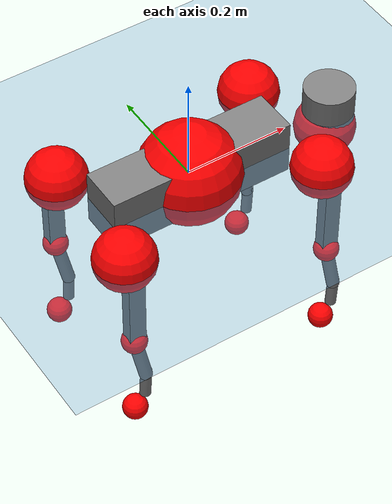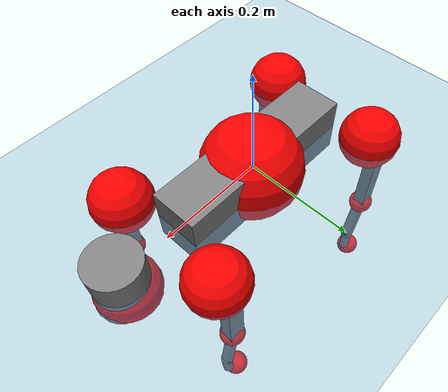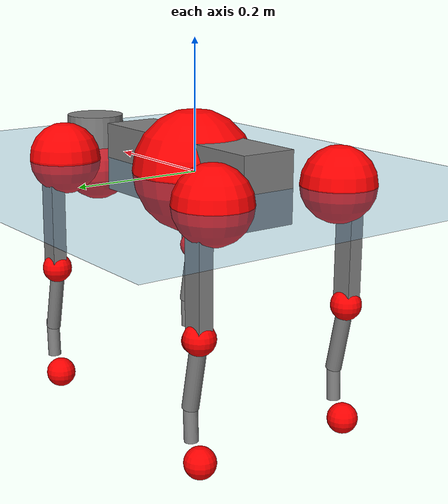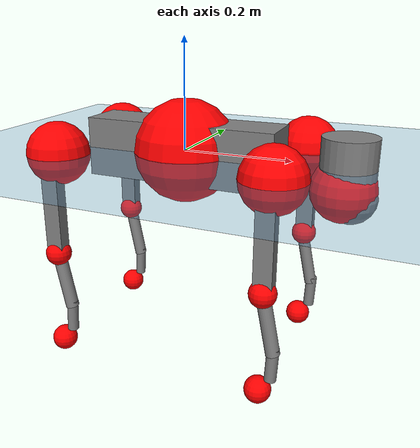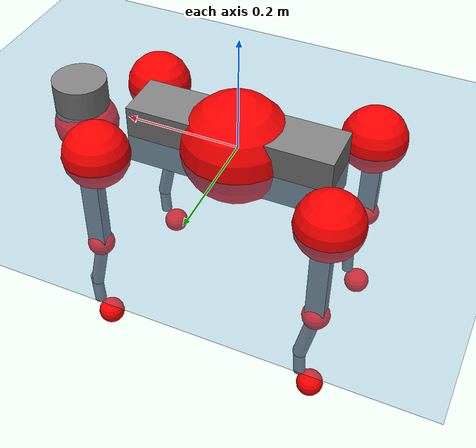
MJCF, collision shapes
<mujoco model="go2">
  <compiler angle="radian" assetdir="assets" balanceinertia="true" inertiafromgeom="false"/>

  <option timestep="0.005" density="1.2" viscosity="2e-05"/>

  <size nkey="1"/>

  <visual>
    <quality shadowsize="8192"/>
    <map shadowclip="0.5"/>
  </visual>

  <default>
    <default class="/">
      <geom contype="0" conaffinity="0" group="1" solref="-1000 -80"/>
      <site size="0.01 0.005 0.005" group="5"/>
      <general forcelimited="true" biastype="affine" gainprm="20" biasprm="0 -20 -0.5"/>
      <default class="go2">
        <joint armature="0.01" damping="0.01" frictionloss="0.2"/>
        <geom condim="1" margin="0.001"/>
        <default class="visual">
          <geom type="mesh" group="2"/>
        </default>
        <default class="collision">
          <geom group="3"/>
          <default class="foot">
            <geom size="0.022 0 0" condim="6" priority="1" friction="0.8 0.02 0.01" solimp="0.015 1 0.022"/>
          </default>
        </default>
        <default class="reward_collision_sphere">
          <geom group="5" rgba="1 0 0 1"/>
        </default>
      </default>
    </default>
  </default>

  <asset>
    <texture type="skybox" colorspace="auto" name="//unnamed_texture_0" builtin="gradient" rgb1="0.95 0.95 0.95" rgb2="0.95 0.95 0.95" width="100" height="600"/>
    <texture type="2d" colorspace="auto" name="texplane" builtin="checker" rgb1="0.345 0.575 0.748" rgb2="0.345 0.575 0.748" markrgb="1 1 1" width="512" height="512"/>
    <material name="MatPlane" class="/" texture="texplane" texuniform="true" texrepeat="2 2" specular="0.9"/>
    <material name="metal" class="/" rgba="0.9 0.95 0.95 1"/>
    <material name="black" class="/" rgba="0 0 0 1"/>
    <material name="white" class="/"/>
    <material name="gray" class="/" rgba="0.671705 0.692426 0.77427 1"/>
    <mesh name="base_0" class="/" file="base_0.obj"/>
    <mesh name="base_1" class="/" file="base_1.obj"/>
    <mesh name="base_2" class="/" file="base_2.obj"/>
    <mesh name="base_3" class="/" file="base_3.obj"/>
    <mesh name="base_4" class="/" file="base_4.obj"/>
    <mesh name="hip_0" class="/" file="hip_0.obj"/>
    <mesh name="hip_1" class="/" file="hip_1.obj"/>
    <mesh name="thigh_0" class="/" file="thigh_0.obj"/>
    <mesh name="thigh_1" class="/" file="thigh_1.obj"/>
    <mesh name="thigh_mirror_0" class="/" file="thigh_mirror_0.obj"/>
    <mesh name="thigh_mirror_1" class="/" file="thigh_mirror_1.obj"/>
    <mesh name="calf_0" class="/" file="calf_0.obj"/>
    <mesh name="calf_1" class="/" file="calf_1.obj"/>
    <mesh name="calf_mirror_0" class="/" file="calf_mirror_0.obj"/>
    <mesh name="calf_mirror_1" class="/" file="calf_mirror_1.obj"/>
    <mesh name="foot" class="/" file="foot.obj"/>
  </asset>

  <worldbody>
    <geom name="floor" class="/" size="100 100 0.125" type="plane" group="0" material="MatPlane"/>
    <light name="toplight_shadow" class="/" pos="0 0 5" dir="0.0990148 0.0990148 -0.990148" type="directional" ambient="0.04 0.04 0.04" diffuse="0.55 0.55 0.55" specular="0.12 0.12 0.12"/>
    <light name="toplight_fill" class="/" pos="0 0 5" dir="0.0990148 0.0990148 -0.990148" type="directional" castshadow="false" ambient="0.04 0.04 0.04" diffuse="0.3 0.3 0.3" specular="0.08 0.08 0.08"/>
    <body name="trunk" childclass="go2" pos="0.00224479 -0.000414261 0.000772449" quat="1 0.00088598 0.00031191 5.98261e-05">
      <inertial pos="0.0193084 -0.000962922 -0.00513846" quat="-0.000462536 0.713311 -0.00180856 0.700845" mass="5.52577" diaginertia="0.117404 0.0763279 0.0104417"/>
      <joint name="//unnamed_joint_0" type="free" armature="0" damping="0" frictionloss="0"/>
      <geom name="//unnamed_geom_1" class="visual" material="black" mesh="base_0"/>
      <geom name="//unnamed_geom_2" class="visual" material="black" mesh="base_1"/>
      <geom name="//unnamed_geom_3" class="visual" material="black" mesh="base_2"/>
      <geom name="//unnamed_geom_4" class="visual" material="white" mesh="base_3"/>
      <geom name="//unnamed_geom_5" class="visual" material="gray" mesh="base_4"/>
      <geom name="trunk_1" class="collision" size="0.177007 0.0439929 0.0536384" type="box"/>
      <geom name="trunk_2" class="collision" size="0.0470513 0.0423461" pos="0.291142 0 0.00847902" type="cylinder"/>
      <geom name="trunk_3" class="collision" size="0.0442282" pos="0.299315 0 -0.0508741"/>
      <geom name="//unnamed_geom_9" class="reward_collision_sphere" size="0.0941025"/>
      <geom name="//unnamed_geom_10" class="reward_collision_sphere" size="0.0564615" pos="0.286034 0 -0.0381556"/>
      <site name="imu" pos="-0.0286295 -0.00218342 0.0445675" size="0.00941025"/>
      <camera name="track" pos="0 -1.90725 0" quat="0.707107 0.707107 0 0" mode="trackcom"/>
      <camera name="ego_camera" pos="0.318724 0 0.0381556" quat="-0.5 -0.5 0.5 0.5"/>
      <body name="FL_hip" pos="0.197327 0.0449785 0.00125599" quat="1 0.000363022 -0.000238017 -0.000300914">
        <inertial pos="-0.00608434 0.00154865 -0.000497023" quat="0.49909 0.499487 0.504708 0.49668" mass="0.567739" diaginertia="0.00100647 0.000464445 0.000209906"/>
        <joint name="FL_hip_joint" pos="0 0 0" axis="0.999894 -0.00843984 -0.0118941" stiffness="0.000717229" range="-1.00594 1.03894" armature="0.00927222" damping="0.00385784" frictionloss="0.189611"/>
        <geom name="//unnamed_geom_11" class="visual" material="metal" mesh="hip_0"/>
        <geom name="//unnamed_geom_12" class="visual" material="gray" mesh="hip_1"/>
        <geom name="//unnamed_geom_13" class="collision" size="0.0432872 0.0188205" pos="0 0.0762898 0" quat="0.707107 0.707107 0 0" type="cylinder"/>
        <geom name="//unnamed_geom_14" class="reward_collision_sphere" size="0.0564615" pos="0 0.0667536 0"/>
        <body name="FL_thigh" pos="-0.00151794 0.0904074 0.00185857" quat="1 0.000213811 -0.000501735 0.000201745">
          <inertial pos="-0.00355157 -0.021239 -0.0293795" quat="0.829567 0.0847075 -0.0199938 0.551583" mass="0.948479" diaginertia="0.00650878 0.00459477 0.000393071"/>
          <joint name="FL_thigh_joint" pos="0 0 0" axis="-0.00961628 0.999943 -0.00472224" range="-1.58224 3.49373" armature="0.00979883" damping="0.00269458" frictionloss="0.197753"/>
          <geom name="//unnamed_geom_15" class="visual" material="metal" mesh="thigh_0"/>
          <geom name="//unnamed_geom_16" class="visual" material="gray" mesh="thigh_1"/>
          <geom name="//unnamed_geom_17" class="collision" size="0.100219 0.0115276 0.0159974" pos="0 0 -0.0903015" quat="0.707107 0 0.707107 0" type="box"/>
          <body name="FL_calf" pos="-0.000343 -0.00248979 -0.180371" quat="1 2.82069e-05 1.68678e-05 -2.78973e-05">
            <inertial pos="0.00530977 -0.000666964 -0.118991" quat="0.713078 0.00323034 -0.00128593 0.701076" mass="0.201051" diaginertia="0.00170965 0.00118898 2.36902e-05"/>
            <joint name="FL_calf_joint" pos="0 0 0" axis="0.00330867 0.999993 0.00193023" stiffness="0.00243957" range="-2.76197 -0.829345" armature="0.00915188" damping="0" frictionloss="0.183302"/>
            <geom name="//unnamed_geom_18" class="visual" material="gray" mesh="calf_0"/>
            <geom name="//unnamed_geom_19" class="visual" material="black" mesh="calf_1"/>
            <geom name="FL_calf0" class="collision" size="0.0112923 0.0564615" pos="0.00817241 0 -0.0508741" quat="0.994493 0 -0.104807 0" type="cylinder"/>
            <geom name="//unnamed_geom_21" class="collision" size="0.0103513 0.0305833" pos="0.020431 0 -0.125489" quat="0.999688 0 0.0249974 0" type="cylinder"/>
            <geom name="//unnamed_geom_22" class="visual" pos="0 0 -0.180603" quat="1 0 0 0" material="black" mesh="foot"/>
            <geom name="FL_foot" class="foot" size="0.0180127" pos="-0.0020431 0 -0.180603"/>
            <geom name="//unnamed_geom_24" class="reward_collision_sphere" size="0.0235256"/>
            <geom name="//unnamed_geom_25" class="reward_collision_sphere" size="0.0235256" pos="-0.0020431 0 -0.180603"/>
            <site name="FL_foot" class="foot" pos="-0.0020431 0 -0.180603" size="0.00941025"/>
          </body>
        </body>
      </body>
      <body name="FR_hip" pos="0.198432 -0.0448464 -0.00173858" quat="1 -0.000274057 0.000148782 -0.000275182">
        <inertial pos="-0.00571943 -0.00336936 -0.000600339" quat="0.498926 0.50732 0.502071 0.491552" mass="0.561301" diaginertia="0.000978235 0.000472473 0.000210922"/>
        <joint name="FR_hip_joint" pos="0 0 0" axis="0.999998 -0.000128011 -0.0019681" stiffness="0.00579156" range="-1.06995 1.04734" armature="0.00902492" damping="0.0185715" frictionloss="0.175344"/>
        <geom name="//unnamed_geom_26" class="visual" pos="0 9.21001e-10 3.95036e-08" quat="4.63268e-05 1 0 0" material="metal" mesh="hip_0"/>
        <geom name="//unnamed_geom_27" class="visual" pos="0 1.49305e-09 -9.77076e-08" quat="4.63268e-05 1 0 0" material="gray" mesh="hip_1"/>
        <geom name="//unnamed_geom_28" class="collision" size="0.0432872 0.0188205" pos="0 -0.0762898 0" quat="0.707107 0.707107 0 0" type="cylinder"/>
        <geom name="//unnamed_geom_29" class="reward_collision_sphere" size="0.0564615" pos="0 -0.0667536 0"/>
        <body name="FR_thigh" pos="0.000261093 -0.09342 -0.00105267" quat="1 0.000148857 -5.27717e-05 -0.000116772">
          <inertial pos="-0.00395957 0.0205372 -0.0281096" quat="0.552105 -0.0206271 0.0848599 0.829188" mass="0.968622" diaginertia="0.00663477 0.00470533 0.000394857"/>
          <joint name="FR_thigh_joint" pos="0 0 0" axis="-0.00195487 -0.999998 -0.000358255" range="-3.49877 1.5913" armature="0.00944846" damping="0.0158197" frictionloss="0.18016"/>
          <geom name="//unnamed_geom_30" class="visual" material="metal" mesh="thigh_mirror_0"/>
          <geom name="//unnamed_geom_31" class="visual" material="gray" mesh="thigh_mirror_1"/>
          <geom name="//unnamed_geom_32" class="collision" size="0.100219 0.0115276 0.0159974" pos="0 0 -0.0903015" quat="0.707107 0 0.707107 0" type="box"/>
          <body name="FR_calf" pos="-0.000804826 -0.00178879 -0.179425" quat="1 -5.0556e-05 -2.44447e-05 -1.43667e-05">
            <inertial pos="0.00622984 0.00111249 -0.120606" quat="0.704347 -0.00942779 -0.00509228 0.709775" mass="0.20126" diaginertia="0.00166327 0.00115664 2.3147e-05"/>
            <joint name="FR_calf_joint" pos="0 0 0" axis="0.00870034 -0.99995 -0.00500504" range="0.844036 2.73376" armature="0.00986056" damping="0.0164592" frictionloss="0.197485"/>
            <geom name="//unnamed_geom_33" class="visual" material="gray" mesh="calf_mirror_0"/>
            <geom name="//unnamed_geom_34" class="visual" material="black" mesh="calf_mirror_1"/>
            <geom name="FR_calf0" class="collision" size="0.0122333 0.0564615" pos="0.0102155 0 -0.0508741" quat="0.995004 0 -0.0998334 0" type="cylinder"/>
            <geom name="//unnamed_geom_36" class="collision" size="0.0103513 0.0305833" pos="0.020431 0 -0.125489" quat="0.999688 0 0.0249974 0" type="cylinder"/>
            <geom name="//unnamed_geom_37" class="visual" pos="0 0 -0.180603" quat="1 0 0 0" material="black" mesh="foot"/>
            <geom name="FR_foot" class="foot" size="0.023197" pos="-0.0020431 0 -0.180603"/>
            <geom name="//unnamed_geom_39" class="reward_collision_sphere" size="0.0235256"/>
            <geom name="//unnamed_geom_40" class="reward_collision_sphere" size="0.0235256" pos="-0.0020431 0 -0.180603"/>
            <site name="FR_foot" class="foot" pos="-0.0020431 0 -0.180603" size="0.00941025"/>
          </body>
        </body>
      </body>
      <body name="RL_hip" pos="-0.197994 0.0447182 -0.000844998" quat="1 -0.000222012 9.18822e-05 0.000343114">
        <inertial pos="0.00453913 0.00427296 -0.000456218" quat="0.503191 0.500356 0.504913 0.491432" mass="0.576518" diaginertia="0.000986011 0.00046972 0.000214147"/>
        <joint name="RL_hip_joint" pos="0 0 0" axis="-0.999824 0.0019635 -0.018653" stiffness="0.00310901" range="-1.05695 1.0488" armature="0.00887368" damping="0.0166979" frictionloss="0.203689"/>
        <geom name="//unnamed_geom_41" class="visual" pos="-1.51277e-09 0 -2.96537e-07" quat="4.63268e-05 0 1 0" material="metal" mesh="hip_0"/>
        <geom name="//unnamed_geom_42" class="visual" pos="-2.45237e-09 0 -2.62986e-07" quat="4.63268e-05 0 1 0" material="gray" mesh="hip_1"/>
        <geom name="//unnamed_geom_43" class="collision" size="0.0432872 0.0188205" pos="0 0.0762898 0" quat="0.707107 0.707107 0 0" type="cylinder"/>
        <geom name="//unnamed_geom_44" class="reward_collision_sphere" size="0.0564615" pos="0 0.0667536 0"/>
        <body name="RL_thigh" pos="2.26385e-05 0.0889191 0.00131289" quat="1 0.00013095 0.000135572 -0.00015113">
          <inertial pos="-0.00356559 -0.0212231 -0.0278564" quat="0.828641 0.0804298 -0.0215997 0.553551" mass="0.975159" diaginertia="0.0065602 0.00456952 0.000382319"/>
          <joint name="RL_thigh_joint" pos="0 0 0" axis="-0.000570803 0.999995 0.00304167" stiffness="0.00560528" range="-0.517257 4.53711" armature="0.00976498" damping="0.0110031" frictionloss="0.188715"/>
          <geom name="//unnamed_geom_45" class="visual" material="metal" mesh="thigh_0"/>
          <geom name="//unnamed_geom_46" class="visual" material="gray" mesh="thigh_1"/>
          <geom name="//unnamed_geom_47" class="collision" size="0.100219 0.0115276 0.0159974" pos="0 0 -0.0903015" quat="0.707107 0 0.707107 0" type="box"/>
          <body name="RL_calf" pos="-0.000121271 -0.00104392 -0.182687" quat="1 3.60822e-06 4.82537e-05 -9.2352e-05">
            <inertial pos="0.00741076 0.00173148 -0.119555" quat="0.70911 0.00295778 -0.00468689 0.705076" mass="0.198621" diaginertia="0.00164607 0.00114359 2.23709e-05"/>
            <joint name="RL_calf_joint" pos="0 0 0" axis="-0.000394701 1 0.000272953" range="-2.71826 -0.85254" armature="0.00925386" damping="0.00487818" frictionloss="0.208033"/>
            <geom name="//unnamed_geom_48" class="visual" material="gray" mesh="calf_0"/>
            <geom name="//unnamed_geom_49" class="visual" material="black" mesh="calf_1"/>
            <geom name="RL_calf0" class="collision" size="0.0122333 0.0564615" pos="0.0102155 0 -0.0508741" quat="0.995004 0 -0.0998334 0" type="cylinder"/>
            <geom name="//unnamed_geom_51" class="collision" size="0.0103513 0.0305833" pos="0.020431 0 -0.125489" quat="0.999688 0 0.0249974 0" type="cylinder"/>
            <geom name="//unnamed_geom_52" class="visual" pos="0 0 -0.180603" quat="1 0 0 0" material="black" mesh="foot"/>
            <geom name="RL_foot" class="foot" size="0.0175422" pos="-0.0020431 0 -0.180603"/>
            <geom name="//unnamed_geom_54" class="reward_collision_sphere" size="0.0235256"/>
            <geom name="//unnamed_geom_55" class="reward_collision_sphere" size="0.0235256" pos="-0.0020431 0 -0.180603"/>
            <site name="RL_foot" class="foot" pos="-0.0020431 0 -0.180603" size="0.00941025"/>
          </body>
        </body>
      </body>
      <body name="RR_hip" pos="-0.198612 -0.0440982 -7.31279e-06" quat="0.999999 0.000994792 -3.34032e-05 0.000138445">
        <inertial pos="0.00746746 -0.00111162 -0.00208769" quat="0.500047 0.497578 0.498797 0.503559" mass="0.56657" diaginertia="0.000989475 0.000471706 0.000209372"/>
        <joint name="RR_hip_joint" pos="0 0 0" axis="-0.999929 0.00470395 0.0109518" range="-1.06699 1.05015" armature="0.00976989" damping="0.0127538" frictionloss="0.187768"/>
        <geom name="//unnamed_geom_56" class="visual" pos="1.51041e-09 9.21001e-10 -3.3604e-07" quat="2.14617e-09 4.63268e-05 4.63268e-05 -1" material="metal" mesh="hip_0"/>
        <geom name="//unnamed_geom_57" class="visual" pos="2.45819e-09 1.49305e-09 -1.65278e-07" quat="2.14617e-09 4.63268e-05 4.63268e-05 -1" material="gray" mesh="hip_1"/>
        <geom name="//unnamed_geom_58" class="collision" size="0.0432872 0.0188205" pos="0 -0.0762898 0" quat="0.707107 0.707107 0 0" type="cylinder"/>
        <geom name="//unnamed_geom_59" class="reward_collision_sphere" size="0.0564615" pos="0 -0.0667536 0"/>
        <body name="RR_thigh" pos="0.000333821 -0.0911524 -0.00283466" quat="1 0.000103855 0.000149061 4.35371e-05">
          <inertial pos="-0.00394346 0.0213295 -0.0278673" quat="0.551445 -0.0212246 0.0848517 0.829613" mass="0.941825" diaginertia="0.00660081 0.00461129 0.000385756"/>
          <joint name="RR_thigh_joint" pos="0 0 0" axis="0.0118736 -0.999927 0.00221911" range="-4.5393 0.554272" armature="0.00916068" damping="0.0127166" frictionloss="0.187288"/>
          <geom name="//unnamed_geom_60" class="visual" material="metal" mesh="thigh_mirror_0"/>
          <geom name="//unnamed_geom_61" class="visual" material="gray" mesh="thigh_mirror_1"/>
          <geom name="//unnamed_geom_62" class="collision" size="0.100219 0.0115276 0.0159974" pos="0 0 -0.0903015" quat="0.707107 0 0.707107 0" type="box"/>
          <body name="RR_calf" pos="-0.000663182 0.000955647 -0.181758" quat="1 4.85191e-05 2.14205e-05 8.14268e-05">
            <inertial pos="0.00560951 0.000974875 -0.119899" quat="0.70361 -0.00230846 0.00204587 0.710579" mass="0.199777" diaginertia="0.00163456 0.00114866 2.36033e-05"/>
            <joint name="RR_calf_joint" pos="0 0 0" axis="0.00307186 -0.999893 0.0142866" range="0.852991 2.72642" armature="0.00978604" damping="0.0182583" frictionloss="0.195642"/>
            <geom name="//unnamed_geom_63" class="visual" material="gray" mesh="calf_mirror_0"/>
            <geom name="//unnamed_geom_64" class="visual" material="black" mesh="calf_mirror_1"/>
            <geom name="RR_calf0" class="collision" size="0.0122333 0.0564615" pos="0.0102155 0 -0.0508741" quat="0.995004 0 -0.0998334 0" type="cylinder"/>
            <geom name="//unnamed_geom_66" class="collision" size="0.0103513 0.0305833" pos="0.020431 0 -0.125489" quat="0.999688 0 0.0249974 0" type="cylinder"/>
            <geom name="//unnamed_geom_67" class="visual" pos="0 0 -0.180603" quat="1 0 0 0" material="black" mesh="foot"/>
            <geom name="RR_foot" class="foot" size="0.0219439" pos="-0.0020431 0 -0.180603"/>
            <geom name="//unnamed_geom_69" class="reward_collision_sphere" size="0.0235256"/>
            <geom name="//unnamed_geom_70" class="reward_collision_sphere" size="0.0235256" pos="-0.0020431 0 -0.180603"/>
            <site name="RR_foot" class="foot" pos="-0.0020431 0 -0.180603" size="0.00941025"/>
          </body>
        </body>
      </body>
    </body>
  </worldbody>

  <contact>
    <pair class="/" geom1="floor" geom2="FL_foot" name="//unnamed_contact_0"/>
    <pair class="/" geom1="floor" geom2="FR_foot" name="//unnamed_contact_1"/>
    <pair class="/" geom1="floor" geom2="RL_foot" name="//unnamed_contact_2"/>
    <pair class="/" geom1="floor" geom2="RR_foot" name="//unnamed_contact_3"/>
  </contact>

  <actuator>
    <general name="FL_hip" class="/" joint="FL_hip_joint" forcerange="-22.402 22.402" gainprm="18.8139" biasprm="0 -18.8139 -0.462617"/>
    <general name="FL_thigh" class="/" joint="FL_thigh_joint" forcerange="-22.755 22.755" gainprm="18.8139" biasprm="0 -18.8139 -0.462617"/>
    <general name="FL_calf" class="/" joint="FL_calf_joint" forcerange="-42.0308 42.0308" gainprm="18.8139" biasprm="0 -18.8139 -0.462617"/>
    <general name="FR_hip" class="/" joint="FR_hip_joint" forcerange="-22.3481 22.3481" gainprm="18.8139" biasprm="0 -18.8139 -0.462617"/>
    <general name="FR_thigh" class="/" joint="FR_thigh_joint" forcerange="-21.8734 21.8734" gainprm="18.8139" biasprm="0 -18.8139 -0.462617"/>
    <general name="FR_calf" class="/" joint="FR_calf_joint" forcerange="-43.1646 43.1646" gainprm="18.8139" biasprm="0 -18.8139 -0.462617"/>
    <general name="RL_hip" class="/" joint="RL_hip_joint" forcerange="-24.0275 24.0275" gainprm="18.8139" biasprm="0 -18.8139 -0.462617"/>
    <general name="RL_thigh" class="/" joint="RL_thigh_joint" forcerange="-22.9827 22.9827" gainprm="18.8139" biasprm="0 -18.8139 -0.462617"/>
    <general name="RL_calf" class="/" joint="RL_calf_joint" forcerange="-39.641 39.641" gainprm="18.8139" biasprm="0 -18.8139 -0.462617"/>
    <general name="RR_hip" class="/" joint="RR_hip_joint" forcerange="-22.0031 22.0031" gainprm="18.8139" biasprm="0 -18.8139 -0.462617"/>
    <general name="RR_thigh" class="/" joint="RR_thigh_joint" forcerange="-23.8785 23.8785" gainprm="18.8139" biasprm="0 -18.8139 -0.462617"/>
    <general name="RR_calf" class="/" joint="RR_calf_joint" forcerange="-42.3678 42.3678" gainprm="18.8139" biasprm="0 -18.8139 -0.462617"/>
  </actuator>

  <sensor>
    <gyro site="imu" name="imu_angular_velocity"/>
    <velocimeter site="imu" name="imu_linear_velocity"/>
    <framelinvel objtype="site" objname="FL_foot" name="FL_foot_global_linear_velocity"/>
    <framelinvel objtype="site" objname="FR_foot" name="FR_foot_global_linear_velocity"/>
    <framelinvel objtype="site" objname="RL_foot" name="RL_foot_global_linear_velocity"/>
    <framelinvel objtype="site" objname="RR_foot" name="RR_foot_global_linear_velocity"/>
  </sensor>

  <keyframe>
    <key name="home" qpos="0 0 0.325 1 0 0 0 0.1 0.8 -1.5 -0.1 -0.8 1.5 -0.1 0.8 -1.5 0.1 -0.8 1.5"/>
  </keyframe>
</mujoco>
